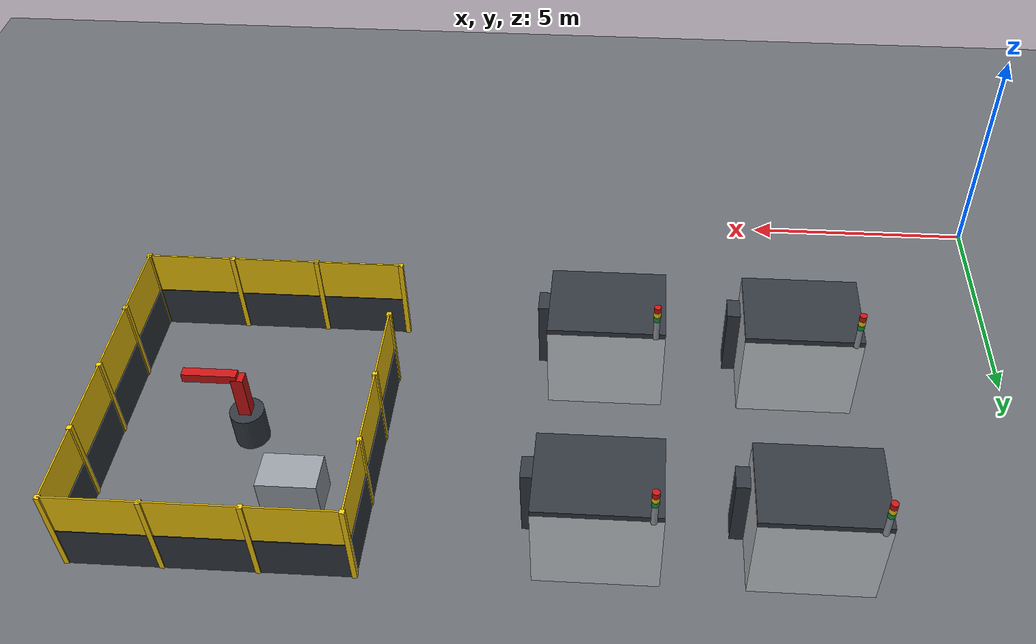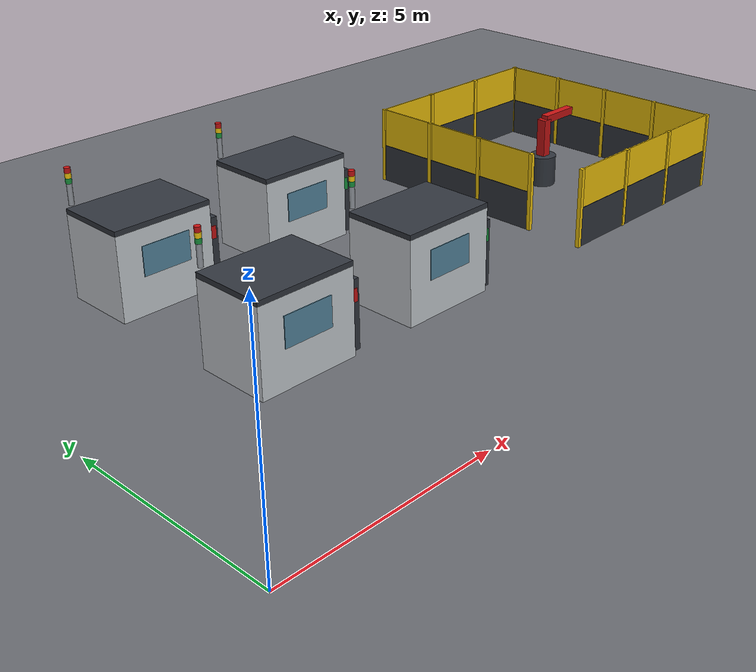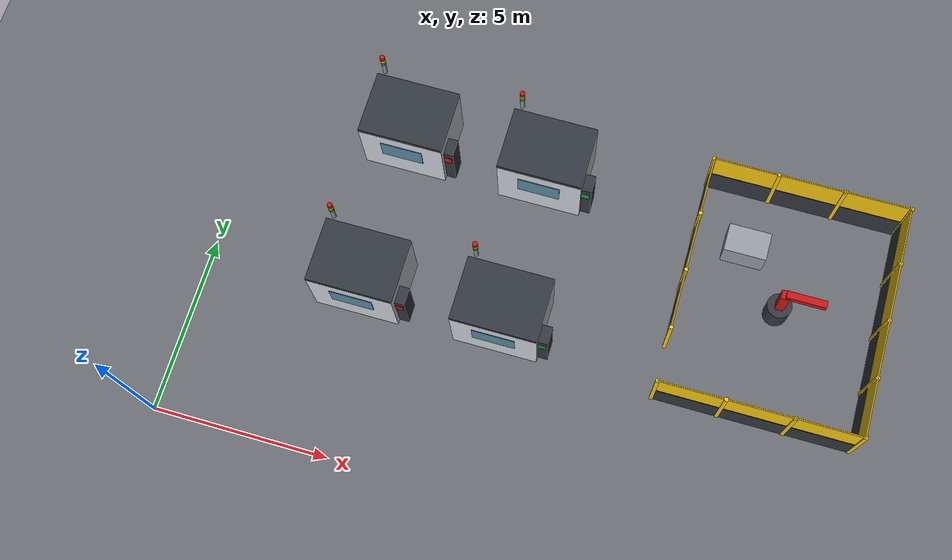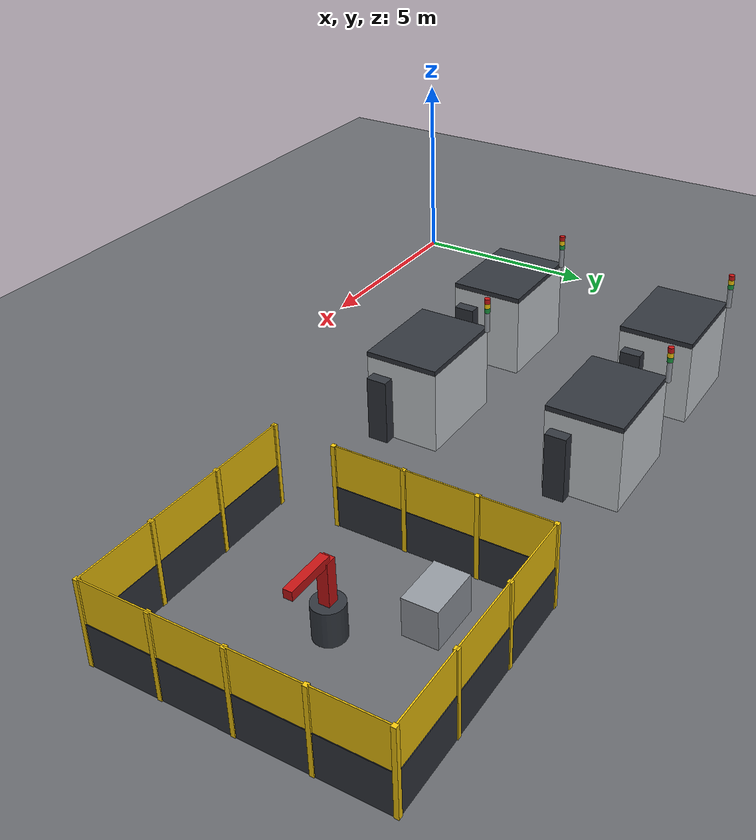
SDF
<sdf version="1.8">
 <world name="factory">
  <model name="ground">
   <static>true</static>
   <link name="l">
    <collision name="c">
     <geometry><plane><normal>0 0 1</normal><size>60 40</size></plane></geometry>
     <surface><friction><ode><mu>1.0</mu><mu2>1.0</mu2></ode></friction></surface>
    </collision>
    <visual name="v">
     <geometry><plane><normal>0 0 1</normal><size>60 40</size></plane></geometry>
     <material>
      <ambient>0.42 0.43 0.45 1</ambient>
      <diffuse>0.42 0.43 0.45 1</diffuse>
      <specular>0.3 0.3 0.3 1</specular>
      <pbr><metal><metalness>0.0</metalness><roughness>0.85</roughness></metal></pbr>
     </material>
    </visual>
   </link>
  </model>
  <model name="machines">
   <static>true</static>
   <link name="l0">
    <pose>4.500 5.000 1.000 0 0 0.000</pose>
    <collision name="c"><geometry><box><size>2.4 1.8 2.0</size></box></geometry></collision>
    <visual name="v">
     <geometry><box><size>2.4 1.8 2.0</size></box></geometry>
     <material>
      <ambient>0.82 0.84 0.86 1</ambient>
      <diffuse>0.82 0.84 0.86 1</diffuse>
      <specular>0.3 0.3 0.3 1</specular>
      <pbr><metal><metalness>0.5</metalness><roughness>0.35</roughness></metal></pbr>
     </material>
    </visual>
   </link>
   <link name="l1">
    <pose>4.500 4.090 1.250 0 0 0.000</pose>
    <visual name="v">
     <geometry><box><size>1.2 0.02 0.7</size></box></geometry>
     <material>
      <ambient>0.35 0.55 0.65 1</ambient>
      <diffuse>0.35 0.55 0.65 1</diffuse>
      <specular>0.3 0.3 0.3 1</specular>
      <pbr><metal><metalness>0.1</metalness><roughness>0.1</roughness></metal></pbr>
     </material>
     <cast_shadows>false</cast_shadows>
    </visual>
   </link>
   <link name="l2">
    <pose>4.500 5.000 2.060 0 0 0.000</pose>
    <collision name="c"><geometry><box><size>2.4 1.8 0.12</size></box></geometry></collision>
    <visual name="v">
     <geometry><box><size>2.4 1.8 0.12</size></box></geometry>
     <material>
      <ambient>0.2 0.22 0.25 1</ambient>
      <diffuse>0.2 0.22 0.25 1</diffuse>
      <specular>0.3 0.3 0.3 1</specular>
      <pbr><metal><metalness>0.6</metalness><roughness>0.35</roughness></metal></pbr>
     </material>
    </visual>
   </link>
   <link name="l3">
    <pose>5.800 4.500 0.800 0 0 0.000</pose>
    <collision name="c"><geometry><box><size>0.35 0.5 1.6</size></box></geometry></collision>
    <visual name="v">
     <geometry><box><size>0.35 0.5 1.6</size></box></geometry>
     <material>
      <ambient>0.2 0.22 0.25 1</ambient>
      <diffuse>0.2 0.22 0.25 1</diffuse>
      <specular>0.3 0.3 0.3 1</specular>
      <pbr><metal><metalness>0.6</metalness><roughness>0.35</roughness></metal></pbr>
     </material>
    </visual>
   </link>
   <link name="l4">
    <pose>5.800 4.240 1.250 0 0 0.000</pose>
    <visual name="v">
     <geometry><box><size>0.25 0.02 0.3</size></box></geometry>
     <material>
      <ambient>0.8 0.08 0.08 1</ambient>
      <diffuse>0.8 0.08 0.08 1</diffuse>
      <specular>0.3 0.3 0.3 1</specular>
      <pbr><metal><metalness>0.2</metalness><roughness>0.45</roughness></metal></pbr>
     </material>
     <cast_shadows>false</cast_shadows>
    </visual>
   </link>
   <link name="l5">
    <pose>3.500 6.000 2.370 0 0 0.000</pose>
    <collision name="c">
     <geometry><cylinder><radius>0.06</radius><length>0.5</length></cylinder></geometry>
    </collision>
    <visual name="v">
     <geometry><cylinder><radius>0.06</radius><length>0.5</length></cylinder></geometry>
     <material>
      <ambient>0.6 0.62 0.65 1</ambient>
      <diffuse>0.6 0.62 0.65 1</diffuse>
      <specular>0.3 0.3 0.3 1</specular>
      <pbr><metal><metalness>0.9</metalness><roughness>0.3</roughness></metal></pbr>
     </material>
    </visual>
   </link>
   <link name="l6">
    <pose>3.500 6.000 2.680 0 0 0.000</pose>
    <visual name="v">
     <geometry><cylinder><radius>0.07</radius><length>0.12</length></cylinder></geometry>
     <material>
      <ambient>0.1 0.6 0.25 1</ambient>
      <diffuse>0.1 0.6 0.25 1</diffuse>
      <specular>0.3 0.3 0.3 1</specular>
      <pbr><metal><metalness>0.0</metalness><roughness>0.5</roughness></metal></pbr>
     </material>
     <cast_shadows>false</cast_shadows>
    </visual>
   </link>
   <link name="l7">
    <pose>3.500 6.000 2.800 0 0 0.000</pose>
    <visual name="v">
     <geometry><cylinder><radius>0.07</radius><length>0.12</length></cylinder></geometry>
     <material>
      <ambient>0.98 0.8 0.05 1</ambient>
      <diffuse>0.98 0.8 0.05 1</diffuse>
      <specular>0.3 0.3 0.3 1</specular>
      <pbr><metal><metalness>0.0</metalness><roughness>0.5</roughness></metal></pbr>
     </material>
     <cast_shadows>false</cast_shadows>
    </visual>
   </link>
   <link name="l8">
    <pose>3.500 6.000 2.920 0 0 0.000</pose>
    <visual name="v">
     <geometry><cylinder><radius>0.07</radius><length>0.12</length></cylinder></geometry>
     <material>
      <ambient>0.8 0.08 0.08 1</ambient>
      <diffuse>0.8 0.08 0.08 1</diffuse>
      <specular>0.3 0.3 0.3 1</specular>
      <pbr><metal><metalness>0.2</metalness><roughness>0.45</roughness></metal></pbr>
     </material>
     <cast_shadows>false</cast_shadows>
    </visual>
   </link>
   <link name="l9">
    <pose>8.500 5.000 1.000 0 0 0.000</pose>
    <collision name="c"><geometry><box><size>2.4 1.8 2.0</size></box></geometry></collision>
    <visual name="v">
     <geometry><box><size>2.4 1.8 2.0</size></box></geometry>
     <material>
      <ambient>0.82 0.84 0.86 1</ambient>
      <diffuse>0.82 0.84 0.86 1</diffuse>
      <specular>0.3 0.3 0.3 1</specular>
      <pbr><metal><metalness>0.5</metalness><roughness>0.35</roughness></metal></pbr>
     </material>
    </visual>
   </link>
   <link name="l10">
    <pose>8.500 4.090 1.250 0 0 0.000</pose>
    <visual name="v">
     <geometry><box><size>1.2 0.02 0.7</size></box></geometry>
     <material>
      <ambient>0.35 0.55 0.65 1</ambient>
      <diffuse>0.35 0.55 0.65 1</diffuse>
      <specular>0.3 0.3 0.3 1</specular>
      <pbr><metal><metalness>0.1</metalness><roughness>0.1</roughness></metal></pbr>
     </material>
     <cast_shadows>false</cast_shadows>
    </visual>
   </link>
   <link name="l11">
    <pose>8.500 5.000 2.060 0 0 0.000</pose>
    <collision name="c"><geometry><box><size>2.4 1.8 0.12</size></box></geometry></collision>
    <visual name="v">
     <geometry><box><size>2.4 1.8 0.12</size></box></geometry>
     <material>
      <ambient>0.2 0.22 0.25 1</ambient>
      <diffuse>0.2 0.22 0.25 1</diffuse>
      <specular>0.3 0.3 0.3 1</specular>
      <pbr><metal><metalness>0.6</metalness><roughness>0.35</roughness></metal></pbr>
     </material>
    </visual>
   </link>
   <link name="l12">
    <pose>9.800 4.500 0.800 0 0 0.000</pose>
    <collision name="c"><geometry><box><size>0.35 0.5 1.6</size></box></geometry></collision>
    <visual name="v">
     <geometry><box><size>0.35 0.5 1.6</size></box></geometry>
     <material>
      <ambient>0.2 0.22 0.25 1</ambient>
      <diffuse>0.2 0.22 0.25 1</diffuse>
      <specular>0.3 0.3 0.3 1</specular>
      <pbr><metal><metalness>0.6</metalness><roughness>0.35</roughness></metal></pbr>
     </material>
    </visual>
   </link>
   <link name="l13">
    <pose>9.800 4.240 1.250 0 0 0.000</pose>
    <visual name="v">
     <geometry><box><size>0.25 0.02 0.3</size></box></geometry>
     <material>
      <ambient>0.1 0.6 0.25 1</ambient>
      <diffuse>0.1 0.6 0.25 1</diffuse>
      <specular>0.3 0.3 0.3 1</specular>
      <pbr><metal><metalness>0.0</metalness><roughness>0.5</roughness></metal></pbr>
     </material>
     <cast_shadows>false</cast_shadows>
    </visual>
   </link>
   <link name="l14">
    <pose>7.500 6.000 2.370 0 0 0.000</pose>
    <collision name="c">
     <geometry><cylinder><radius>0.06</radius><length>0.5</length></cylinder></geometry>
    </collision>
    <visual name="v">
     <geometry><cylinder><radius>0.06</radius><length>0.5</length></cylinder></geometry>
     <material>
      <ambient>0.6 0.62 0.65 1</ambient>
      <diffuse>0.6 0.62 0.65 1</diffuse>
      <specular>0.3 0.3 0.3 1</specular>
      <pbr><metal><metalness>0.9</metalness><roughness>0.3</roughness></metal></pbr>
     </material>
    </visual>
   </link>
   <link name="l15">
    <pose>7.500 6.000 2.680 0 0 0.000</pose>
    <visual name="v">
     <geometry><cylinder><radius>0.07</radius><length>0.12</length></cylinder></geometry>
     <material>
      <ambient>0.1 0.6 0.25 1</ambient>
      <diffuse>0.1 0.6 0.25 1</diffuse>
      <specular>0.3 0.3 0.3 1</specular>
      <pbr><metal><metalness>0.0</metalness><roughness>0.5</roughness></metal></pbr>
     </material>
     <cast_shadows>false</cast_shadows>
    </visual>
   </link>
   <link name="l16">
    <pose>7.500 6.000 2.800 0 0 0.000</pose>
    <visual name="v">
     <geometry><cylinder><radius>0.07</radius><length>0.12</length></cylinder></geometry>
     <material>
      <ambient>0.98 0.8 0.05 1</ambient>
      <diffuse>0.98 0.8 0.05 1</diffuse>
      <specular>0.3 0.3 0.3 1</specular>
      <pbr><metal><metalness>0.0</metalness><roughness>0.5</roughness></metal></pbr>
     </material>
     <cast_shadows>false</cast_shadows>
    </visual>
   </link>
   <link name="l17">
    <pose>7.500 6.000 2.920 0 0 0.000</pose>
    <visual name="v">
     <geometry><cylinder><radius>0.07</radius><length>0.12</length></cylinder></geometry>
     <material>
      <ambient>0.8 0.08 0.08 1</ambient>
      <diffuse>0.8 0.08 0.08 1</diffuse>
      <specular>0.3 0.3 0.3 1</specular>
      <pbr><metal><metalness>0.2</metalness><roughness>0.45</roughness></metal></pbr>
     </material>
     <cast_shadows>false</cast_shadows>
    </visual>
   </link>
   <link name="l18">
    <pose>4.500 9.500 1.000 0 0 0.000</pose>
    <collision name="c"><geometry><box><size>2.4 1.8 2.0</size></box></geometry></collision>
    <visual name="v">
     <geometry><box><size>2.4 1.8 2.0</size></box></geometry>
     <material>
      <ambient>0.82 0.84 0.86 1</ambient>
      <diffuse>0.82 0.84 0.86 1</diffuse>
      <specular>0.3 0.3 0.3 1</specular>
      <pbr><metal><metalness>0.5</metalness><roughness>0.35</roughness></metal></pbr>
     </material>
    </visual>
   </link>
   <link name="l19">
    <pose>4.500 8.590 1.250 0 0 0.000</pose>
    <visual name="v">
     <geometry><box><size>1.2 0.02 0.7</size></box></geometry>
     <material>
      <ambient>0.35 0.55 0.65 1</ambient>
      <diffuse>0.35 0.55 0.65 1</diffuse>
      <specular>0.3 0.3 0.3 1</specular>
      <pbr><metal><metalness>0.1</metalness><roughness>0.1</roughness></metal></pbr>
     </material>
     <cast_shadows>false</cast_shadows>
    </visual>
   </link>
   <link name="l20">
    <pose>4.500 9.500 2.060 0 0 0.000</pose>
    <collision name="c"><geometry><box><size>2.4 1.8 0.12</size></box></geometry></collision>
    <visual name="v">
     <geometry><box><size>2.4 1.8 0.12</size></box></geometry>
     <material>
      <ambient>0.2 0.22 0.25 1</ambient>
      <diffuse>0.2 0.22 0.25 1</diffuse>
      <specular>0.3 0.3 0.3 1</specular>
      <pbr><metal><metalness>0.6</metalness><roughness>0.35</roughness></metal></pbr>
     </material>
    </visual>
   </link>
   <link name="l21">
    <pose>5.800 9.000 0.800 0 0 0.000</pose>
    <collision name="c"><geometry><box><size>0.35 0.5 1.6</size></box></geometry></collision>
    <visual name="v">
     <geometry><box><size>0.35 0.5 1.6</size></box></geometry>
     <material>
      <ambient>0.2 0.22 0.25 1</ambient>
      <diffuse>0.2 0.22 0.25 1</diffuse>
      <specular>0.3 0.3 0.3 1</specular>
      <pbr><metal><metalness>0.6</metalness><roughness>0.35</roughness></metal></pbr>
     </material>
    </visual>
   </link>
   <link name="l22">
    <pose>5.800 8.740 1.250 0 0 0.000</pose>
    <visual name="v">
     <geometry><box><size>0.25 0.02 0.3</size></box></geometry>
     <material>
      <ambient>0.8 0.08 0.08 1</ambient>
      <diffuse>0.8 0.08 0.08 1</diffuse>
      <specular>0.3 0.3 0.3 1</specular>
      <pbr><metal><metalness>0.2</metalness><roughness>0.45</roughness></metal></pbr>
     </material>
     <cast_shadows>false</cast_shadows>
    </visual>
   </link>
   <link name="l23">
    <pose>3.500 10.500 2.370 0 0 0.000</pose>
    <collision name="c">
     <geometry><cylinder><radius>0.06</radius><length>0.5</length></cylinder></geometry>
    </collision>
    <visual name="v">
     <geometry><cylinder><radius>0.06</radius><length>0.5</length></cylinder></geometry>
     <material>
      <ambient>0.6 0.62 0.65 1</ambient>
      <diffuse>0.6 0.62 0.65 1</diffuse>
      <specular>0.3 0.3 0.3 1</specular>
      <pbr><metal><metalness>0.9</metalness><roughness>0.3</roughness></metal></pbr>
     </material>
    </visual>
   </link>
   <link name="l24">
    <pose>3.500 10.500 2.680 0 0 0.000</pose>
    <visual name="v">
     <geometry><cylinder><radius>0.07</radius><length>0.12</length></cylinder></geometry>
     <material>
      <ambient>0.1 0.6 0.25 1</ambient>
      <diffuse>0.1 0.6 0.25 1</diffuse>
      <specular>0.3 0.3 0.3 1</specular>
      <pbr><metal><metalness>0.0</metalness><roughness>0.5</roughness></metal></pbr>
     </material>
     <cast_shadows>false</cast_shadows>
    </visual>
   </link>
   <link name="l25">
    <pose>3.500 10.500 2.800 0 0 0.000</pose>
    <visual name="v">
     <geometry><cylinder><radius>0.07</radius><length>0.12</length></cylinder></geometry>
     <material>
      <ambient>0.98 0.8 0.05 1</ambient>
      <diffuse>0.98 0.8 0.05 1</diffuse>
      <specular>0.3 0.3 0.3 1</specular>
      <pbr><metal><metalness>0.0</metalness><roughness>0.5</roughness></metal></pbr>
     </material>
     <cast_shadows>false</cast_shadows>
    </visual>
   </link>
   <link name="l26">
    <pose>3.500 10.500 2.920 0 0 0.000</pose>
    <visual name="v">
     <geometry><cylinder><radius>0.07</radius><length>0.12</length></cylinder></geometry>
     <material>
      <ambient>0.8 0.08 0.08 1</ambient>
      <diffuse>0.8 0.08 0.08 1</diffuse>
      <specular>0.3 0.3 0.3 1</specular>
      <pbr><metal><metalness>0.2</metalness><roughness>0.45</roughness></metal></pbr>
     </material>
     <cast_shadows>false</cast_shadows>
    </visual>
   </link>
   <link name="l27">
    <pose>8.500 9.500 1.000 0 0 0.000</pose>
    <collision name="c"><geometry><box><size>2.4 1.8 2.0</size></box></geometry></collision>
    <visual name="v">
     <geometry><box><size>2.4 1.8 2.0</size></box></geometry>
     <material>
      <ambient>0.82 0.84 0.86 1</ambient>
      <diffuse>0.82 0.84 0.86 1</diffuse>
      <specular>0.3 0.3 0.3 1</specular>
      <pbr><metal><metalness>0.5</metalness><roughness>0.35</roughness></metal></pbr>
     </material>
    </visual>
   </link>
   <link name="l28">
    <pose>8.500 8.590 1.250 0 0 0.000</pose>
    <visual name="v">
     <geometry><box><size>1.2 0.02 0.7</size></box></geometry>
     <material>
      <ambient>0.35 0.55 0.65 1</ambient>
      <diffuse>0.35 0.55 0.65 1</diffuse>
      <specular>0.3 0.3 0.3 1</specular>
      <pbr><metal><metalness>0.1</metalness><roughness>0.1</roughness></metal></pbr>
     </material>
     <cast_shadows>false</cast_shadows>
    </visual>
   </link>
   <link name="l29">
    <pose>8.500 9.500 2.060 0 0 0.000</pose>
    <collision name="c"><geometry><box><size>2.4 1.8 0.12</size></box></geometry></collision>
    <visual name="v">
     <geometry><box><size>2.4 1.8 0.12</size></box></geometry>
     <material>
      <ambient>0.2 0.22 0.25 1</ambient>
      <diffuse>0.2 0.22 0.25 1</diffuse>
      <specular>0.3 0.3 0.3 1</specular>
      <pbr><metal><metalness>0.6</metalness><roughness>0.35</roughness></metal></pbr>
     </material>
    </visual>
   </link>
   <link name="l30">
    <pose>9.800 9.000 0.800 0 0 0.000</pose>
    <collision name="c"><geometry><box><size>0.35 0.5 1.6</size></box></geometry></collision>
    <visual name="v">
     <geometry><box><size>0.35 0.5 1.6</size></box></geometry>
     <material>
      <ambient>0.2 0.22 0.25 1</ambient>
      <diffuse>0.2 0.22 0.25 1</diffuse>
      <specular>0.3 0.3 0.3 1</specular>
      <pbr><metal><metalness>0.6</metalness><roughness>0.35</roughness></metal></pbr>
     </material>
    </visual>
   </link>
   <link name="l31">
    <pose>9.800 8.740 1.250 0 0 0.000</pose>
    <visual name="v">
     <geometry><box><size>0.25 0.02 0.3</size></box></geometry>
     <material>
      <ambient>0.1 0.6 0.25 1</ambient>
      <diffuse>0.1 0.6 0.25 1</diffuse>
      <specular>0.3 0.3 0.3 1</specular>
      <pbr><metal><metalness>0.0</metalness><roughness>0.5</roughness></metal></pbr>
     </material>
     <cast_shadows>false</cast_shadows>
    </visual>
   </link>
   <link name="l32">
    <pose>7.500 10.500 2.370 0 0 0.000</pose>
    <collision name="c">
     <geometry><cylinder><radius>0.06</radius><length>0.5</length></cylinder></geometry>
    </collision>
    <visual name="v">
     <geometry><cylinder><radius>0.06</radius><length>0.5</length></cylinder></geometry>
     <material>
      <ambient>0.6 0.62 0.65 1</ambient>
      <diffuse>0.6 0.62 0.65 1</diffuse>
      <specular>0.3 0.3 0.3 1</specular>
      <pbr><metal><metalness>0.9</metalness><roughness>0.3</roughness></metal></pbr>
     </material>
    </visual>
   </link>
   <link name="l33">
    <pose>7.500 10.500 2.680 0 0 0.000</pose>
    <visual name="v">
     <geometry><cylinder><radius>0.07</radius><length>0.12</length></cylinder></geometry>
     <material>
      <ambient>0.1 0.6 0.25 1</ambient>
      <diffuse>0.1 0.6 0.25 1</diffuse>
      <specular>0.3 0.3 0.3 1</specular>
      <pbr><metal><metalness>0.0</metalness><roughness>0.5</roughness></metal></pbr>
     </material>
     <cast_shadows>false</cast_shadows>
    </visual>
   </link>
   <link name="l34">
    <pose>7.500 10.500 2.800 0 0 0.000</pose>
    <visual name="v">
     <geometry><cylinder><radius>0.07</radius><length>0.12</length></cylinder></geometry>
     <material>
      <ambient>0.98 0.8 0.05 1</ambient>
      <diffuse>0.98 0.8 0.05 1</diffuse>
      <specular>0.3 0.3 0.3 1</specular>
      <pbr><metal><metalness>0.0</metalness><roughness>0.5</roughness></metal></pbr>
     </material>
     <cast_shadows>false</cast_shadows>
    </visual>
   </link>
   <link name="l35">
    <pose>7.500 10.500 2.920 0 0 0.000</pose>
    <visual name="v">
     <geometry><cylinder><radius>0.07</radius><length>0.12</length></cylinder></geometry>
     <material>
      <ambient>0.8 0.08 0.08 1</ambient>
      <diffuse>0.8 0.08 0.08 1</diffuse>
      <specular>0.3 0.3 0.3 1</specular>
      <pbr><metal><metalness>0.2</metalness><roughness>0.45</roughness></metal></pbr>
     </material>
     <cast_shadows>false</cast_shadows>
    </visual>
   </link>
   <link name="l36">
    <pose>15.750 4.000 0.500 0 0 0.000</pose>
    <collision name="c"><geometry><box><size>5.5 0.06 1.0</size></box></geometry></collision>
    <visual name="v">
     <geometry><box><size>5.5 0.06 1.0</size></box></geometry>
     <material>
      <ambient>0.2 0.22 0.25 1</ambient>
      <diffuse>0.2 0.22 0.25 1</diffuse>
      <specular>0.3 0.3 0.3 1</specular>
      <pbr><metal><metalness>0.6</metalness><roughness>0.35</roughness></metal></pbr>
     </material>
    </visual>
   </link>
   <link name="l37">
    <pose>15.750 4.000 1.500 0 0 0.000</pose>
    <visual name="v">
     <geometry><box><size>5.5 0.03 1.0</size></box></geometry>
     <material>
      <ambient>0.98 0.8 0.05 1</ambient>
      <diffuse>0.98 0.8 0.05 1</diffuse>
      <specular>0.3 0.3 0.3 1</specular>
      <pbr><metal><metalness>0.0</metalness><roughness>0.5</roughness></metal></pbr>
     </material>
     <cast_shadows>false</cast_shadows>
    </visual>
   </link>
   <link name="l38">
    <pose>13.000 4.000 1.000 0 0 0.000</pose>
    <collision name="c"><geometry><box><size>0.1 0.1 2.0</size></box></geometry></collision>
    <visual name="v">
     <geometry><box><size>0.1 0.1 2.0</size></box></geometry>
     <material>
      <ambient>0.98 0.8 0.05 1</ambient>
      <diffuse>0.98 0.8 0.05 1</diffuse>
      <specular>0.3 0.3 0.3 1</specular>
      <pbr><metal><metalness>0.0</metalness><roughness>0.5</roughness></metal></pbr>
     </material>
    </visual>
   </link>
   <link name="l39">
    <pose>14.833 4.000 1.000 0 0 0.000</pose>
    <collision name="c"><geometry><box><size>0.1 0.1 2.0</size></box></geometry></collision>
    <visual name="v">
     <geometry><box><size>0.1 0.1 2.0</size></box></geometry>
     <material>
      <ambient>0.98 0.8 0.05 1</ambient>
      <diffuse>0.98 0.8 0.05 1</diffuse>
      <specular>0.3 0.3 0.3 1</specular>
      <pbr><metal><metalness>0.0</metalness><roughness>0.5</roughness></metal></pbr>
     </material>
    </visual>
   </link>
   <link name="l40">
    <pose>16.667 4.000 1.000 0 0 0.000</pose>
    <collision name="c"><geometry><box><size>0.1 0.1 2.0</size></box></geometry></collision>
    <visual name="v">
     <geometry><box><size>0.1 0.1 2.0</size></box></geometry>
     <material>
      <ambient>0.98 0.8 0.05 1</ambient>
      <diffuse>0.98 0.8 0.05 1</diffuse>
      <specular>0.3 0.3 0.3 1</specular>
      <pbr><metal><metalness>0.0</metalness><roughness>0.5</roughness></metal></pbr>
     </material>
    </visual>
   </link>
   <link name="l41">
    <pose>18.500 4.000 1.000 0 0 0.000</pose>
    <collision name="c"><geometry><box><size>0.1 0.1 2.0</size></box></geometry></collision>
    <visual name="v">
     <geometry><box><size>0.1 0.1 2.0</size></box></geometry>
     <material>
      <ambient>0.98 0.8 0.05 1</ambient>
      <diffuse>0.98 0.8 0.05 1</diffuse>
      <specular>0.3 0.3 0.3 1</specular>
      <pbr><metal><metalness>0.0</metalness><roughness>0.5</roughness></metal></pbr>
     </material>
    </visual>
   </link>
   <link name="l42">
    <pose>15.750 10.500 0.500 0 0 0.000</pose>
    <collision name="c"><geometry><box><size>5.5 0.06 1.0</size></box></geometry></collision>
    <visual name="v">
     <geometry><box><size>5.5 0.06 1.0</size></box></geometry>
     <material>
      <ambient>0.2 0.22 0.25 1</ambient>
      <diffuse>0.2 0.22 0.25 1</diffuse>
      <specular>0.3 0.3 0.3 1</specular>
      <pbr><metal><metalness>0.6</metalness><roughness>0.35</roughness></metal></pbr>
     </material>
    </visual>
   </link>
   <link name="l43">
    <pose>15.750 10.500 1.500 0 0 0.000</pose>
    <visual name="v">
     <geometry><box><size>5.5 0.03 1.0</size></box></geometry>
     <material>
      <ambient>0.98 0.8 0.05 1</ambient>
      <diffuse>0.98 0.8 0.05 1</diffuse>
      <specular>0.3 0.3 0.3 1</specular>
      <pbr><metal><metalness>0.0</metalness><roughness>0.5</roughness></metal></pbr>
     </material>
     <cast_shadows>false</cast_shadows>
    </visual>
   </link>
   <link name="l44">
    <pose>13.000 10.500 1.000 0 0 0.000</pose>
    <collision name="c"><geometry><box><size>0.1 0.1 2.0</size></box></geometry></collision>
    <visual name="v">
     <geometry><box><size>0.1 0.1 2.0</size></box></geometry>
     <material>
      <ambient>0.98 0.8 0.05 1</ambient>
      <diffuse>0.98 0.8 0.05 1</diffuse>
      <specular>0.3 0.3 0.3 1</specular>
      <pbr><metal><metalness>0.0</metalness><roughness>0.5</roughness></metal></pbr>
     </material>
    </visual>
   </link>
   <link name="l45">
    <pose>14.833 10.500 1.000 0 0 0.000</pose>
    <collision name="c"><geometry><box><size>0.1 0.1 2.0</size></box></geometry></collision>
    <visual name="v">
     <geometry><box><size>0.1 0.1 2.0</size></box></geometry>
     <material>
      <ambient>0.98 0.8 0.05 1</ambient>
      <diffuse>0.98 0.8 0.05 1</diffuse>
      <specular>0.3 0.3 0.3 1</specular>
      <pbr><metal><metalness>0.0</metalness><roughness>0.5</roughness></metal></pbr>
     </material>
    </visual>
   </link>
   <link name="l46">
    <pose>16.667 10.500 1.000 0 0 0.000</pose>
    <collision name="c"><geometry><box><size>0.1 0.1 2.0</size></box></geometry></collision>
    <visual name="v">
     <geometry><box><size>0.1 0.1 2.0</size></box></geometry>
     <material>
      <ambient>0.98 0.8 0.05 1</ambient>
      <diffuse>0.98 0.8 0.05 1</diffuse>
      <specular>0.3 0.3 0.3 1</specular>
      <pbr><metal><metalness>0.0</metalness><roughness>0.5</roughness></metal></pbr>
     </material>
    </visual>
   </link>
   <link name="l47">
    <pose>18.500 10.500 1.000 0 0 0.000</pose>
    <collision name="c"><geometry><box><size>0.1 0.1 2.0</size></box></geometry></collision>
    <visual name="v">
     <geometry><box><size>0.1 0.1 2.0</size></box></geometry>
     <material>
      <ambient>0.98 0.8 0.05 1</ambient>
      <diffuse>0.98 0.8 0.05 1</diffuse>
      <specular>0.3 0.3 0.3 1</specular>
      <pbr><metal><metalness>0.0</metalness><roughness>0.5</roughness></metal></pbr>
     </material>
    </visual>
   </link>
   <link name="l48">
    <pose>18.500 7.250 0.500 0 0 1.571</pose>
    <collision name="c"><geometry><box><size>6.5 0.06 1.0</size></box></geometry></collision>
    <visual name="v">
     <geometry><box><size>6.5 0.06 1.0</size></box></geometry>
     <material>
      <ambient>0.2 0.22 0.25 1</ambient>
      <diffuse>0.2 0.22 0.25 1</diffuse>
      <specular>0.3 0.3 0.3 1</specular>
      <pbr><metal><metalness>0.6</metalness><roughness>0.35</roughness></metal></pbr>
     </material>
    </visual>
   </link>
   <link name="l49">
    <pose>18.500 7.250 1.500 0 0 1.571</pose>
    <visual name="v">
     <geometry><box><size>6.5 0.03 1.0</size></box></geometry>
     <material>
      <ambient>0.98 0.8 0.05 1</ambient>
      <diffuse>0.98 0.8 0.05 1</diffuse>
      <specular>0.3 0.3 0.3 1</specular>
      <pbr><metal><metalness>0.0</metalness><roughness>0.5</roughness></metal></pbr>
     </material>
     <cast_shadows>false</cast_shadows>
    </visual>
   </link>
   <link name="l50">
    <pose>18.500 4.000 1.000 0 0 0.000</pose>
    <collision name="c"><geometry><box><size>0.1 0.1 2.0</size></box></geometry></collision>
    <visual name="v">
     <geometry><box><size>0.1 0.1 2.0</size></box></geometry>
     <material>
      <ambient>0.98 0.8 0.05 1</ambient>
      <diffuse>0.98 0.8 0.05 1</diffuse>
      <specular>0.3 0.3 0.3 1</specular>
      <pbr><metal><metalness>0.0</metalness><roughness>0.5</roughness></metal></pbr>
     </material>
    </visual>
   </link>
   <link name="l51">
    <pose>18.500 5.625 1.000 0 0 0.000</pose>
    <collision name="c"><geometry><box><size>0.1 0.1 2.0</size></box></geometry></collision>
    <visual name="v">
     <geometry><box><size>0.1 0.1 2.0</size></box></geometry>
     <material>
      <ambient>0.98 0.8 0.05 1</ambient>
      <diffuse>0.98 0.8 0.05 1</diffuse>
      <specular>0.3 0.3 0.3 1</specular>
      <pbr><metal><metalness>0.0</metalness><roughness>0.5</roughness></metal></pbr>
     </material>
    </visual>
   </link>
   <link name="l52">
    <pose>18.500 7.250 1.000 0 0 0.000</pose>
    <collision name="c"><geometry><box><size>0.1 0.1 2.0</size></box></geometry></collision>
    <visual name="v">
     <geometry><box><size>0.1 0.1 2.0</size></box></geometry>
     <material>
      <ambient>0.98 0.8 0.05 1</ambient>
      <diffuse>0.98 0.8 0.05 1</diffuse>
      <specular>0.3 0.3 0.3 1</specular>
      <pbr><metal><metalness>0.0</metalness><roughness>0.5</roughness></metal></pbr>
     </material>
    </visual>
   </link>
   <link name="l53">
    <pose>18.500 8.875 1.000 0 0 0.000</pose>
    <collision name="c"><geometry><box><size>0.1 0.1 2.0</size></box></geometry></collision>
    <visual name="v">
     <geometry><box><size>0.1 0.1 2.0</size></box></geometry>
     <material>
      <ambient>0.98 0.8 0.05 1</ambient>
      <diffuse>0.98 0.8 0.05 1</diffuse>
      <specular>0.3 0.3 0.3 1</specular>
      <pbr><metal><metalness>0.0</metalness><roughness>0.5</roughness></metal></pbr>
     </material>
    </visual>
   </link>
   <link name="l54">
    <pose>18.500 10.500 1.000 0 0 0.000</pose>
    <collision name="c"><geometry><box><size>0.1 0.1 2.0</size></box></geometry></collision>
    <visual name="v">
     <geometry><box><size>0.1 0.1 2.0</size></box></geometry>
     <material>
      <ambient>0.98 0.8 0.05 1</ambient>
      <diffuse>0.98 0.8 0.05 1</diffuse>
      <specular>0.3 0.3 0.3 1</specular>
      <pbr><metal><metalness>0.0</metalness><roughness>0.5</roughness></metal></pbr>
     </material>
    </visual>
   </link>
   <link name="l55">
    <pose>13.000 8.000 0.500 0 0 1.571</pose>
    <collision name="c"><geometry><box><size>5.0 0.06 1.0</size></box></geometry></collision>
    <visual name="v">
     <geometry><box><size>5.0 0.06 1.0</size></box></geometry>
     <material>
      <ambient>0.2 0.22 0.25 1</ambient>
      <diffuse>0.2 0.22 0.25 1</diffuse>
      <specular>0.3 0.3 0.3 1</specular>
      <pbr><metal><metalness>0.6</metalness><roughness>0.35</roughness></metal></pbr>
     </material>
    </visual>
   </link>
   <link name="l56">
    <pose>13.000 8.000 1.500 0 0 1.571</pose>
    <visual name="v">
     <geometry><box><size>5.0 0.03 1.0</size></box></geometry>
     <material>
      <ambient>0.98 0.8 0.05 1</ambient>
      <diffuse>0.98 0.8 0.05 1</diffuse>
      <specular>0.3 0.3 0.3 1</specular>
      <pbr><metal><metalness>0.0</metalness><roughness>0.5</roughness></metal></pbr>
     </material>
     <cast_shadows>false</cast_shadows>
    </visual>
   </link>
   <link name="l57">
    <pose>13.000 5.500 1.000 0 0 0.000</pose>
    <collision name="c"><geometry><box><size>0.1 0.1 2.0</size></box></geometry></collision>
    <visual name="v">
     <geometry><box><size>0.1 0.1 2.0</size></box></geometry>
     <material>
      <ambient>0.98 0.8 0.05 1</ambient>
      <diffuse>0.98 0.8 0.05 1</diffuse>
      <specular>0.3 0.3 0.3 1</specular>
      <pbr><metal><metalness>0.0</metalness><roughness>0.5</roughness></metal></pbr>
     </material>
    </visual>
   </link>
   <link name="l58">
    <pose>13.000 7.167 1.000 0 0 0.000</pose>
    <collision name="c"><geometry><box><size>0.1 0.1 2.0</size></box></geometry></collision>
    <visual name="v">
     <geometry><box><size>0.1 0.1 2.0</size></box></geometry>
     <material>
      <ambient>0.98 0.8 0.05 1</ambient>
      <diffuse>0.98 0.8 0.05 1</diffuse>
      <specular>0.3 0.3 0.3 1</specular>
      <pbr><metal><metalness>0.0</metalness><roughness>0.5</roughness></metal></pbr>
     </material>
    </visual>
   </link>
   <link name="l59">
    <pose>13.000 8.833 1.000 0 0 0.000</pose>
    <collision name="c"><geometry><box><size>0.1 0.1 2.0</size></box></geometry></collision>
    <visual name="v">
     <geometry><box><size>0.1 0.1 2.0</size></box></geometry>
     <material>
      <ambient>0.98 0.8 0.05 1</ambient>
      <diffuse>0.98 0.8 0.05 1</diffuse>
      <specular>0.3 0.3 0.3 1</specular>
      <pbr><metal><metalness>0.0</metalness><roughness>0.5</roughness></metal></pbr>
     </material>
    </visual>
   </link>
   <link name="l60">
    <pose>13.000 10.500 1.000 0 0 0.000</pose>
    <collision name="c"><geometry><box><size>0.1 0.1 2.0</size></box></geometry></collision>
    <visual name="v">
     <geometry><box><size>0.1 0.1 2.0</size></box></geometry>
     <material>
      <ambient>0.98 0.8 0.05 1</ambient>
      <diffuse>0.98 0.8 0.05 1</diffuse>
      <specular>0.3 0.3 0.3 1</specular>
      <pbr><metal><metalness>0.0</metalness><roughness>0.5</roughness></metal></pbr>
     </material>
    </visual>
   </link>
   <link name="l61">
    <pose>15.750 7.250 0.400 0 0 0.000</pose>
    <collision name="c">
     <geometry><cylinder><radius>0.35</radius><length>0.8</length></cylinder></geometry>
    </collision>
    <visual name="v">
     <geometry><cylinder><radius>0.35</radius><length>0.8</length></cylinder></geometry>
     <material>
      <ambient>0.2 0.22 0.25 1</ambient>
      <diffuse>0.2 0.22 0.25 1</diffuse>
      <specular>0.3 0.3 0.3 1</specular>
      <pbr><metal><metalness>0.6</metalness><roughness>0.35</roughness></metal></pbr>
     </material>
    </visual>
   </link>
   <link name="l62">
    <pose>15.750 7.250 1.300 0 0 0.000</pose>
    <collision name="c"><geometry><box><size>0.25 0.25 1.0</size></box></geometry></collision>
    <visual name="v">
     <geometry><box><size>0.25 0.25 1.0</size></box></geometry>
     <material>
      <ambient>0.8 0.08 0.08 1</ambient>
      <diffuse>0.8 0.08 0.08 1</diffuse>
      <specular>0.3 0.3 0.3 1</specular>
      <pbr><metal><metalness>0.2</metalness><roughness>0.45</roughness></metal></pbr>
     </material>
    </visual>
   </link>
   <link name="l63">
    <pose>16.300 7.250 1.800 0 0 0.000</pose>
    <collision name="c"><geometry><box><size>1.1 0.2 0.2</size></box></geometry></collision>
    <visual name="v">
     <geometry><box><size>1.1 0.2 0.2</size></box></geometry>
     <material>
      <ambient>0.8 0.08 0.08 1</ambient>
      <diffuse>0.8 0.08 0.08 1</diffuse>
      <specular>0.3 0.3 0.3 1</specular>
      <pbr><metal><metalness>0.2</metalness><roughness>0.45</roughness></metal></pbr>
     </material>
    </visual>
   </link>
   <link name="l64">
    <pose>14.500 8.800 0.450 0 0 0.000</pose>
    <collision name="c"><geometry><box><size>1.2 0.8 0.9</size></box></geometry></collision>
    <visual name="v">
     <geometry><box><size>1.2 0.8 0.9</size></box></geometry>
     <material>
      <ambient>0.6 0.62 0.65 1</ambient>
      <diffuse>0.6 0.62 0.65 1</diffuse>
      <specular>0.3 0.3 0.3 1</specular>
      <pbr><metal><metalness>0.9</metalness><roughness>0.3</roughness></metal></pbr>
     </material>
    </visual>
   </link>
  </model>
 </world>
</sdf>
